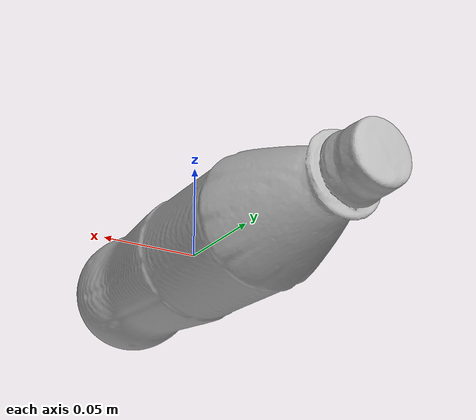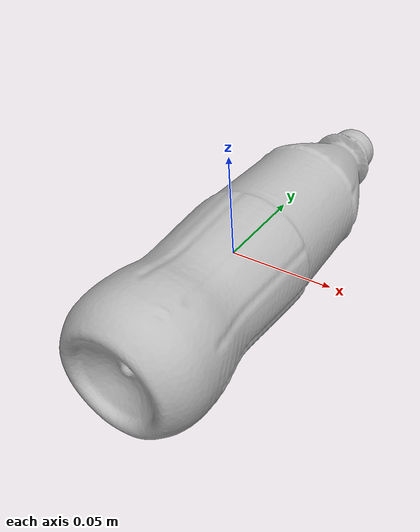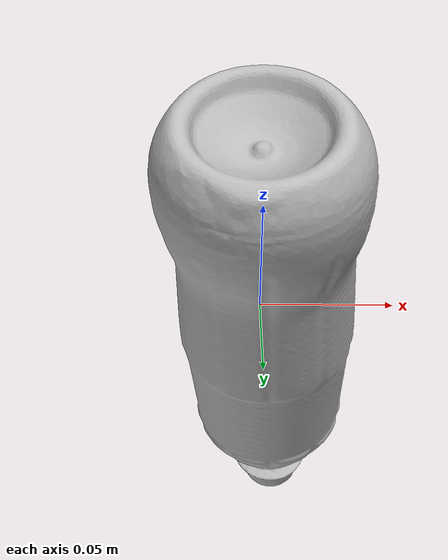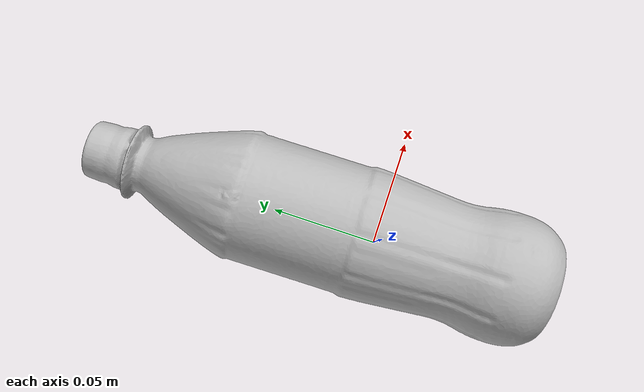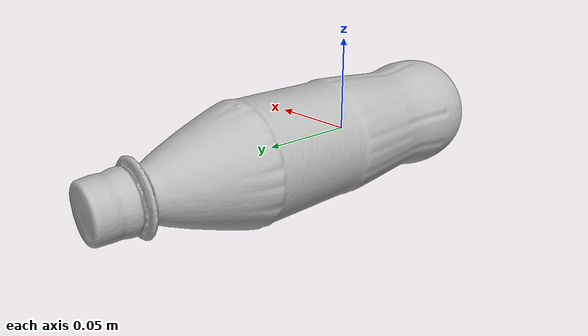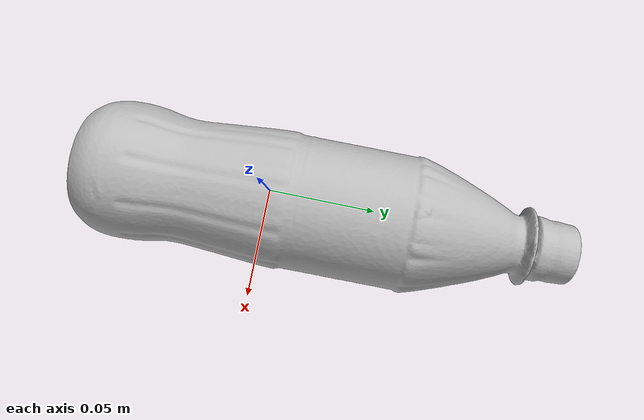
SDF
<?xml version='1.0'?>
<sdf version="1.4">
  <model name="CokePlasticSmall">
    <static>false</static>
    <link name="link">
      <inertial>
        <pose>0.0027119956435517952 0.014591514109732273 -0.0044578128687308045 1.5519541934540864 0.6302292043284919 -0.0005750205955492567</pose>
        <mass>0.06493714148360473</mass>
        <inertia>
          <ixx>0.00024070453068599315</ixx>
          <ixy>3.975963889916119e-20</ixy>
          <ixz>-6.014065844765042e-22</ixz>
          <iyy>0.00024062378717284484</iyy>
          <iyz>8.51415922315177e-22</iyz>
          <izz>3.1606811196621115e-05</izz>
        </inertia>
      </inertial>
      <collision name="collision">
        <geometry>
          <mesh>
            <!-- Use a downsampled mesh for collisions -->
            <uri>model:///CokePlasticSmall/CokePlasticSmall_250_collision.obj</uri>
	        </mesh>
        </geometry>
        <surface>
      </surface>
      </collision>
      <visual name="visual">
        <geometry>
          <mesh>
            <uri>model:///CokePlasticSmall/CokePlasticSmall_25k_tex.obj</uri>
	        </mesh>
        </geometry>
        <material>
          <script>
            <uri>model:///CokePlasticSmall/CokePlasticSmall.material</uri>
            <name>CokePlasticSmall</name>
          </script>
        </material>
      </visual>
    </link>
  </model>
</sdf>
